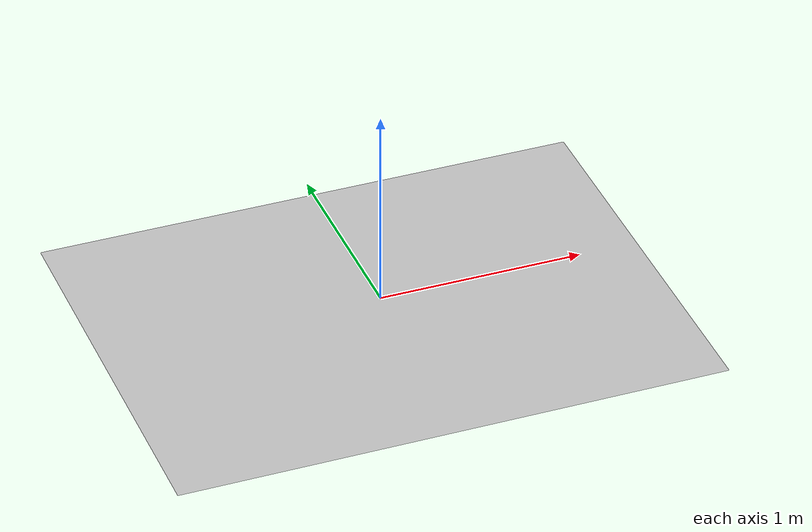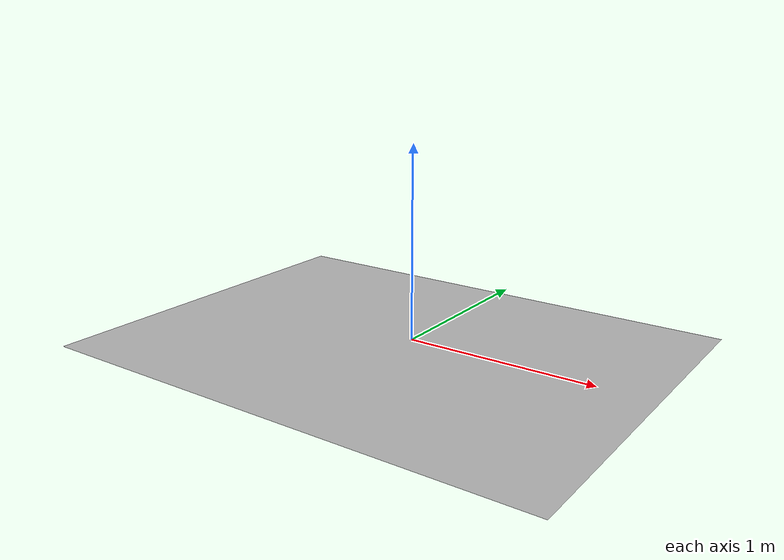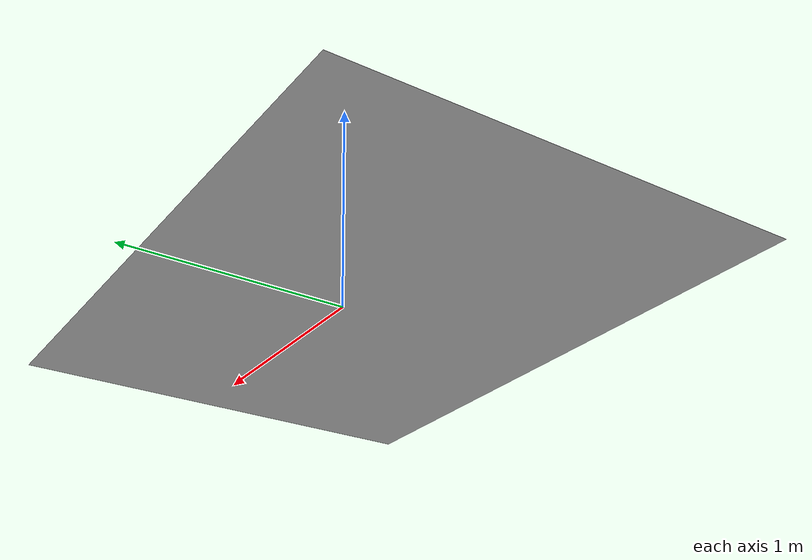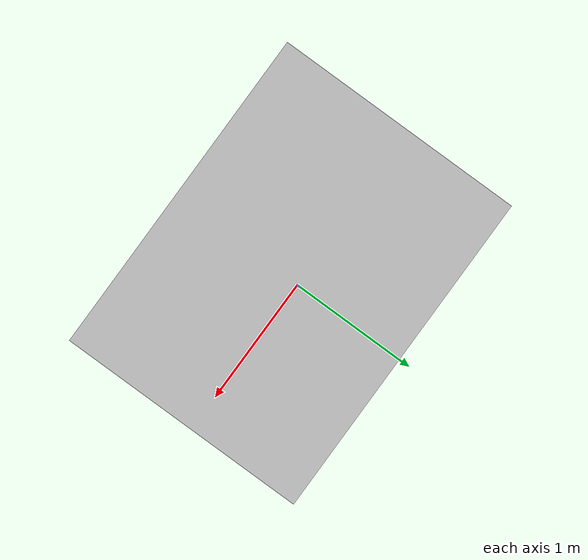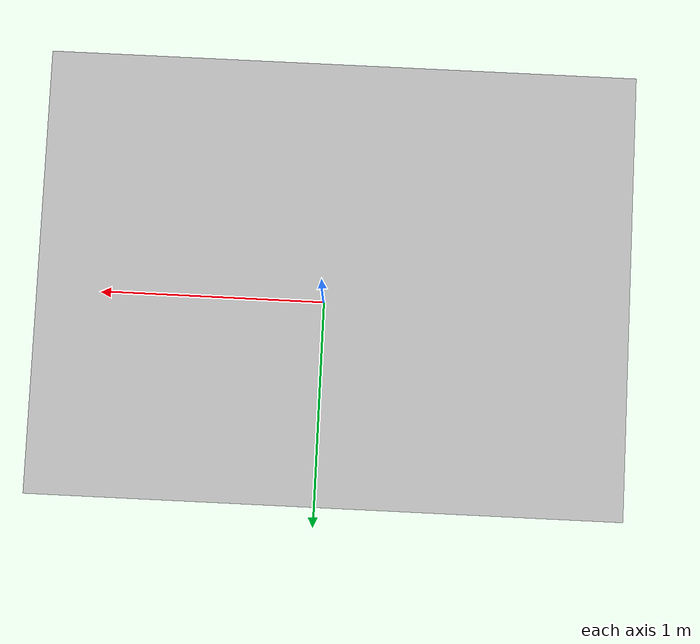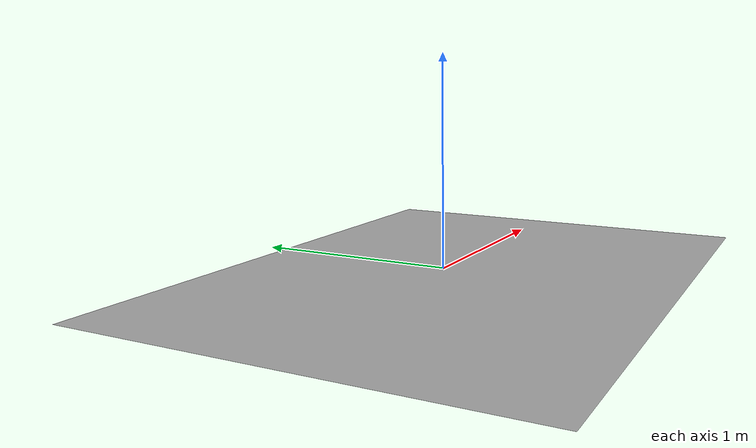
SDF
<?xml version='1.0'?>
<sdf version='1.6'>
  <model name='checkerboard_plane'>
    <link name='link'>
      <pose frame=''>-0.04 -0.09 0 0 -0 0</pose>
      <self_collide>0</self_collide>
      <kinematic>0</kinematic>
      <gravity>1</gravity>
      <inertial>
        <mass>1</mass>
        <pose frame=''>0 0 0 0 -0 0</pose>
        <inertia>
          <ixx>1</ixx>
          <ixy>0</ixy>
          <ixz>0</ixz>
          <iyy>1</iyy>
          <iyz>0</iyz>
          <izz>1</izz>
        </inertia>
      </inertial>
      <visual name='visual'>
        <geometry>
          <mesh>
            <uri>model://checkerboard_plane/meshes/checkerboard_plane.dae</uri>
            <scale>1.33 1 1</scale>
          </mesh>
        </geometry>
        <material>
          <shader type='pixel'>
            <normal_map>__default__</normal_map>
          </shader>
        </material>
        <pose frame=''>0 0 0 0 -0 0</pose>
        <cast_shadows>1</cast_shadows>
        <transparency>0</transparency>
      </visual>
    </link>
    <static>1</static>
    <allow_auto_disable>1</allow_auto_disable>
  </model>
</sdf>
